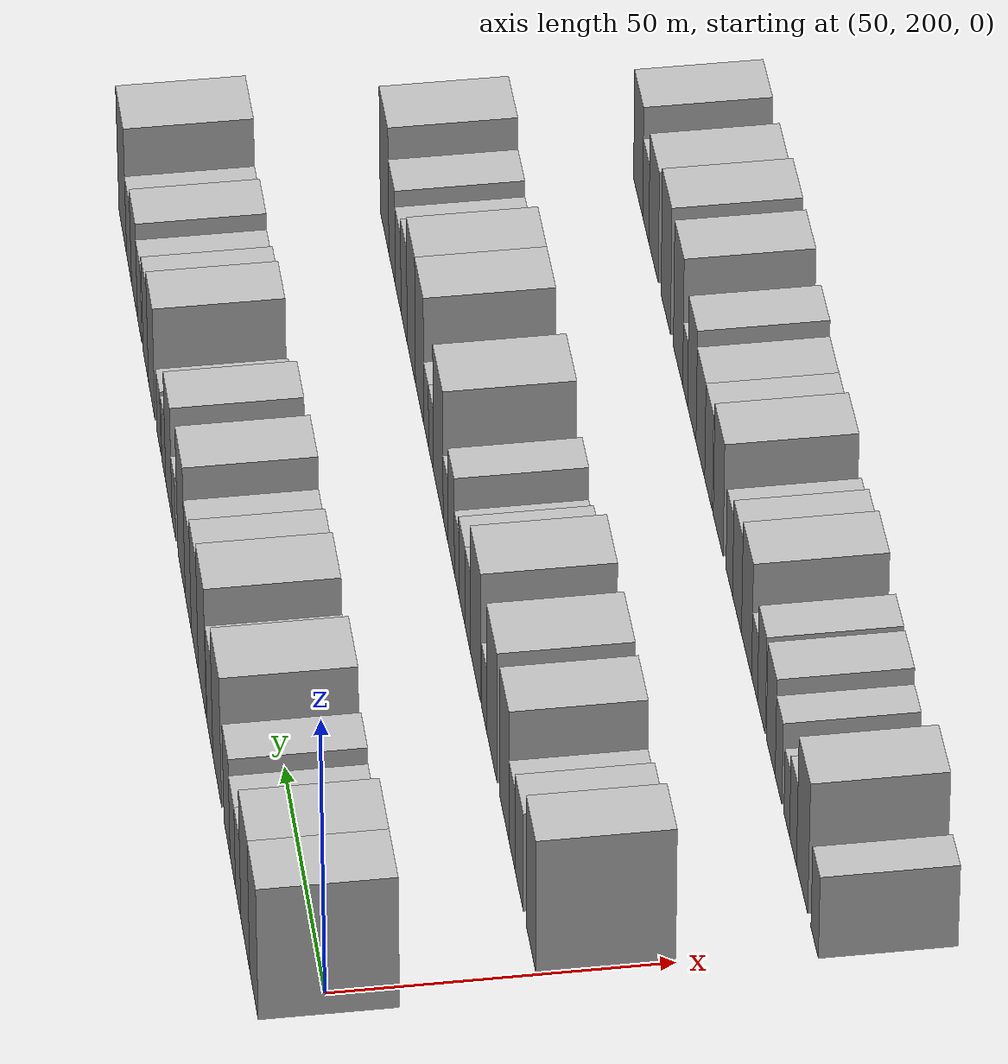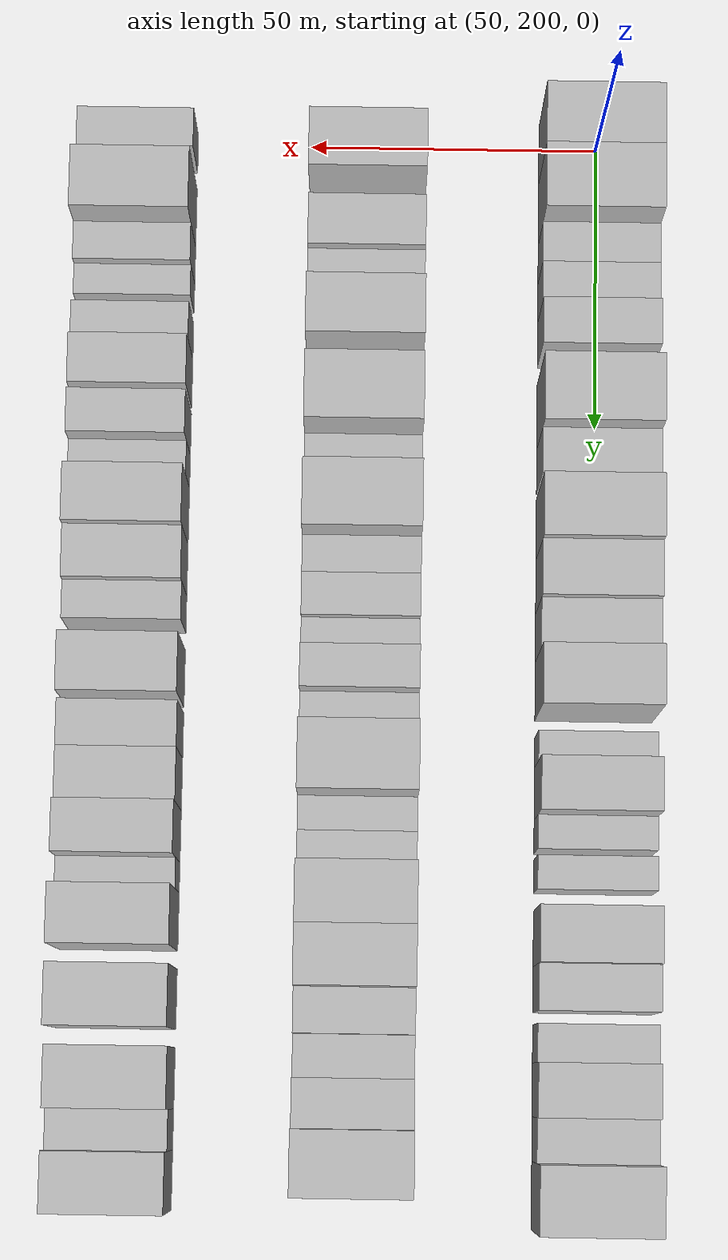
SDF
<sdf version="1.6">
 <world name="default">
  <model name="building_68">
   <static>1</static>
   <pose>50.0000 200.9179 0 0.000000 0.000000 0.000000</pose>
   <link name="link">
    <pose>0 0 12.00 0 0 0</pose>
    <collision name="collision"><geometry><box><size>20.0000 10.5770 24.0000</size></box></geometry></collision>
    <visual name="visual">
     <cast_shadows>0</cast_shadows>
     <geometry><box><size>20.0000 10.5770 24.0000</size></box></geometry>
     <material>
      <script>
       <uri>model://HANNAS_wall/materials/scripts</uri>
       <uri>model://HANNAS_wall/materials/textures</uri>
       <name>vrc/HANNAS_wall</name>
      </script>
     </material>
    </visual>
   </link>
  </model>
  <model name="building_69">
   <static>1</static>
   <pose>50.0000 211.7810 0 0.000000 0.000000 0.000000</pose>
   <link name="link">
    <pose>0 0 12.00 0 0 0</pose>
    <collision name="collision"><geometry><box><size>20.0000 11.1493 24.0000</size></box></geometry></collision>
    <visual name="visual">
     <cast_shadows>0</cast_shadows>
     <geometry><box><size>20.0000 11.1493 24.0000</size></box></geometry>
     <material>
      <script>
       <uri>model://HANNAS_wall/materials/scripts</uri>
       <uri>model://HANNAS_wall/materials/textures</uri>
       <name>vrc/HANNAS_wall</name>
      </script>
     </material>
    </visual>
   </link>
  </model>
  <model name="building_70">
   <static>1</static>
   <pose>50.0000 220.8269 0 0.000000 0.000000 0.000000</pose>
   <link name="link">
    <pose>0 0 7.50 0 0 0</pose>
    <collision name="collision"><geometry><box><size>20.0000 6.9425 15.0000</size></box></geometry></collision>
    <visual name="visual">
     <cast_shadows>0</cast_shadows>
     <geometry><box><size>20.0000 6.9425 15.0000</size></box></geometry>
     <material>
      <script>
       <uri>model://HANNAS_wall/materials/scripts</uri>
       <uri>model://HANNAS_wall/materials/textures</uri>
       <name>vrc/HANNAS_wall</name>
      </script>
     </material>
    </visual>
   </link>
  </model>
  <model name="building_71">
   <static>1</static>
   <pose>50.0000 227.8247 0 0.000000 0.000000 0.000000</pose>
   <link name="link">
    <pose>0 0 7.50 0 0 0</pose>
    <collision name="collision"><geometry><box><size>20.0000 7.0530 15.0000</size></box></geometry></collision>
    <visual name="visual">
     <cast_shadows>0</cast_shadows>
     <geometry><box><size>20.0000 7.0530 15.0000</size></box></geometry>
     <material>
      <script>
       <uri>model://HANNAS_wall/materials/scripts</uri>
       <uri>model://HANNAS_wall/materials/textures</uri>
       <name>vrc/HANNAS_wall</name>
      </script>
     </material>
    </visual>
   </link>
  </model>
  <model name="building_72">
   <static>1</static>
   <pose>50.0000 235.3184 0 0.000000 0.000000 0.000000</pose>
   <link name="link">
    <pose>0 0 9.00 0 0 0</pose>
    <collision name="collision"><geometry><box><size>20.0000 7.9345 18.0000</size></box></geometry></collision>
    <visual name="visual">
     <cast_shadows>0</cast_shadows>
     <geometry><box><size>20.0000 7.9345 18.0000</size></box></geometry>
     <material>
      <script>
       <uri>model://HANNAS_wall/materials/scripts</uri>
       <uri>model://HANNAS_wall/materials/textures</uri>
       <name>vrc/HANNAS_wall</name>
      </script>
     </material>
    </visual>
   </link>
  </model>
  <model name="building_73">
   <static>1</static>
   <pose>50.0000 248.0648 0 0.000000 0.000000 0.000000</pose>
   <link name="link">
    <pose>0 0 12.00 0 0 0</pose>
    <collision name="collision"><geometry><box><size>20.0000 11.5583 24.0000</size></box></geometry></collision>
    <visual name="visual">
     <cast_shadows>0</cast_shadows>
     <geometry><box><size>20.0000 11.5583 24.0000</size></box></geometry>
     <material>
      <script>
       <uri>model://HANNAS_wall/materials/scripts</uri>
       <uri>model://HANNAS_wall/materials/textures</uri>
       <name>vrc/HANNAS_wall</name>
      </script>
     </material>
    </visual>
   </link>
  </model>
  <model name="building_74">
   <static>1</static>
   <pose>50.0000 257.7547 0 0.000000 0.000000 0.000000</pose>
   <link name="link">
    <pose>0 0 9.00 0 0 0</pose>
    <collision name="collision"><geometry><box><size>20.0000 7.8214 18.0000</size></box></geometry></collision>
    <visual name="visual">
     <cast_shadows>0</cast_shadows>
     <geometry><box><size>20.0000 7.8214 18.0000</size></box></geometry>
     <material>
      <script>
       <uri>model://HANNAS_wall/materials/scripts</uri>
       <uri>model://HANNAS_wall/materials/textures</uri>
       <name>vrc/HANNAS_wall</name>
      </script>
     </material>
    </visual>
   </link>
  </model>
  <model name="building_75">
   <static>1</static>
   <pose>50.0000 267.9823 0 0.000000 0.000000 0.000000</pose>
   <link name="link">
    <pose>0 0 12.00 0 0 0</pose>
    <collision name="collision"><geometry><box><size>20.0000 10.6339 24.0000</size></box></geometry></collision>
    <visual name="visual">
     <cast_shadows>0</cast_shadows>
     <geometry><box><size>20.0000 10.6339 24.0000</size></box></geometry>
     <material>
      <script>
       <uri>model://HANNAS_wall/materials/scripts</uri>
       <uri>model://HANNAS_wall/materials/textures</uri>
       <name>vrc/HANNAS_wall</name>
      </script>
     </material>
    </visual>
   </link>
  </model>
  <model name="building_76">
   <static>1</static>
   <pose>50.0000 278.0014 0 0.000000 0.000000 0.000000</pose>
   <link name="link">
    <pose>0 0 10.50 0 0 0</pose>
    <collision name="collision"><geometry><box><size>20.0000 9.4041 21.0000</size></box></geometry></collision>
    <visual name="visual">
     <cast_shadows>0</cast_shadows>
     <geometry><box><size>20.0000 9.4041 21.0000</size></box></geometry>
     <material>
      <script>
       <uri>model://HANNAS_wall/materials/scripts</uri>
       <uri>model://HANNAS_wall/materials/textures</uri>
       <name>vrc/HANNAS_wall</name>
      </script>
     </material>
    </visual>
   </link>
  </model>
  <model name="building_77">
   <static>1</static>
   <pose>50.0000 286.9192 0 0.000000 0.000000 0.000000</pose>
   <link name="link">
    <pose>0 0 9.00 0 0 0</pose>
    <collision name="collision"><geometry><box><size>20.0000 8.4316 18.0000</size></box></geometry></collision>
    <visual name="visual">
     <cast_shadows>0</cast_shadows>
     <geometry><box><size>20.0000 8.4316 18.0000</size></box></geometry>
     <material>
      <script>
       <uri>model://HANNAS_wall/materials/scripts</uri>
       <uri>model://HANNAS_wall/materials/textures</uri>
       <name>vrc/HANNAS_wall</name>
      </script>
     </material>
    </visual>
   </link>
  </model>
  <model name="building_78">
   <static>1</static>
   <pose>50.0000 296.1577 0 0.000000 0.000000 0.000000</pose>
   <link name="link">
    <pose>0 0 12.00 0 0 0</pose>
    <collision name="collision"><geometry><box><size>20.0000 10.0453 24.0000</size></box></geometry></collision>
    <visual name="visual">
     <cast_shadows>0</cast_shadows>
     <geometry><box><size>20.0000 10.0453 24.0000</size></box></geometry>
     <material>
      <script>
       <uri>model://HANNAS_wall/materials/scripts</uri>
       <uri>model://HANNAS_wall/materials/textures</uri>
       <name>vrc/HANNAS_wall</name>
      </script>
     </material>
    </visual>
   </link>
  </model>
  <model name="building_79">
   <static>1</static>
   <pose>50.0000 306.7409 0 0.000000 0.000000 0.000000</pose>
   <link name="link">
    <pose>0 0 6.00 0 0 0</pose>
    <collision name="collision"><geometry><box><size>20.0000 5.1210 12.0000</size></box></geometry></collision>
    <visual name="visual">
     <cast_shadows>0</cast_shadows>
     <geometry><box><size>20.0000 5.1210 12.0000</size></box></geometry>
     <material>
      <script>
       <uri>model://HANNAS_wall/materials/scripts</uri>
       <uri>model://HANNAS_wall/materials/textures</uri>
       <name>vrc/HANNAS_wall</name>
      </script>
     </material>
    </visual>
   </link>
  </model>
  <model name="building_80">
   <static>1</static>
   <pose>50.0000 313.7798 0 0.000000 0.000000 0.000000</pose>
   <link name="link">
    <pose>0 0 10.50 0 0 0</pose>
    <collision name="collision"><geometry><box><size>20.0000 8.9568 21.0000</size></box></geometry></collision>
    <visual name="visual">
     <cast_shadows>0</cast_shadows>
     <geometry><box><size>20.0000 8.9568 21.0000</size></box></geometry>
     <material>
      <script>
       <uri>model://HANNAS_wall/materials/scripts</uri>
       <uri>model://HANNAS_wall/materials/textures</uri>
       <name>vrc/HANNAS_wall</name>
      </script>
     </material>
    </visual>
   </link>
  </model>
  <model name="building_81">
   <static>1</static>
   <pose>50.0000 321.1036 0 0.000000 0.000000 0.000000</pose>
   <link name="link">
    <pose>0 0 6.00 0 0 0</pose>
    <collision name="collision"><geometry><box><size>20.0000 5.6908 12.0000</size></box></geometry></collision>
    <visual name="visual">
     <cast_shadows>0</cast_shadows>
     <geometry><box><size>20.0000 5.6908 12.0000</size></box></geometry>
     <material>
      <script>
       <uri>model://HANNAS_wall/materials/scripts</uri>
       <uri>model://HANNAS_wall/materials/textures</uri>
       <name>vrc/HANNAS_wall</name>
      </script>
     </material>
    </visual>
   </link>
  </model>
  <model name="building_82">
   <static>1</static>
   <pose>50.0000 327.7999 0 0.000000 0.000000 0.000000</pose>
   <link name="link">
    <pose>0 0 6.00 0 0 0</pose>
    <collision name="collision"><geometry><box><size>20.0000 5.7016 12.0000</size></box></geometry></collision>
    <visual name="visual">
     <cast_shadows>0</cast_shadows>
     <geometry><box><size>20.0000 5.7016 12.0000</size></box></geometry>
     <material>
      <script>
       <uri>model://HANNAS_wall/materials/scripts</uri>
       <uri>model://HANNAS_wall/materials/textures</uri>
       <name>vrc/HANNAS_wall</name>
      </script>
     </material>
    </visual>
   </link>
  </model>
  <model name="building_83">
   <static>1</static>
   <pose>50.0000 338.3224 0 0.000000 0.000000 0.000000</pose>
   <link name="link">
    <pose>0 0 10.50 0 0 0</pose>
    <collision name="collision"><geometry><box><size>20.0000 9.3435 21.0000</size></box></geometry></collision>
    <visual name="visual">
     <cast_shadows>0</cast_shadows>
     <geometry><box><size>20.0000 9.3435 21.0000</size></box></geometry>
     <material>
      <script>
       <uri>model://HANNAS_wall/materials/scripts</uri>
       <uri>model://HANNAS_wall/materials/textures</uri>
       <name>vrc/HANNAS_wall</name>
      </script>
     </material>
    </visual>
   </link>
  </model>
  <model name="building_84">
   <static>1</static>
   <pose>50.0000 346.8448 0 0.000000 0.000000 0.000000</pose>
   <link name="link">
    <pose>0 0 9.00 0 0 0</pose>
    <collision name="collision"><geometry><box><size>20.0000 7.7013 18.0000</size></box></geometry></collision>
    <visual name="visual">
     <cast_shadows>0</cast_shadows>
     <geometry><box><size>20.0000 7.7013 18.0000</size></box></geometry>
     <material>
      <script>
       <uri>model://HANNAS_wall/materials/scripts</uri>
       <uri>model://HANNAS_wall/materials/textures</uri>
       <name>vrc/HANNAS_wall</name>
      </script>
     </material>
    </visual>
   </link>
  </model>
  <model name="building_85">
   <static>1</static>
   <pose>50.0000 355.8475 0 0.000000 0.000000 0.000000</pose>
   <link name="link">
    <pose>0 0 7.50 0 0 0</pose>
    <collision name="collision"><geometry><box><size>20.0000 6.3040 15.0000</size></box></geometry></collision>
    <visual name="visual">
     <cast_shadows>0</cast_shadows>
     <geometry><box><size>20.0000 6.3040 15.0000</size></box></geometry>
     <material>
      <script>
       <uri>model://HANNAS_wall/materials/scripts</uri>
       <uri>model://HANNAS_wall/materials/textures</uri>
       <name>vrc/HANNAS_wall</name>
      </script>
     </material>
    </visual>
   </link>
  </model>
  <model name="building_86">
   <static>1</static>
   <pose>50.0000 363.4536 0 0.000000 0.000000 0.000000</pose>
   <link name="link">
    <pose>0 0 9.00 0 0 0</pose>
    <collision name="collision"><geometry><box><size>20.0000 8.9084 18.0000</size></box></geometry></collision>
    <visual name="visual">
     <cast_shadows>0</cast_shadows>
     <geometry><box><size>20.0000 8.9084 18.0000</size></box></geometry>
     <material>
      <script>
       <uri>model://HANNAS_wall/materials/scripts</uri>
       <uri>model://HANNAS_wall/materials/textures</uri>
       <name>vrc/HANNAS_wall</name>
      </script>
     </material>
    </visual>
   </link>
  </model>
  <model name="building_87">
   <static>1</static>
   <pose>50.0000 371.5803 0 0.000000 0.000000 0.000000</pose>
   <link name="link">
    <pose>0 0 7.50 0 0 0</pose>
    <collision name="collision"><geometry><box><size>20.0000 7.3449 15.0000</size></box></geometry></collision>
    <visual name="visual">
     <cast_shadows>0</cast_shadows>
     <geometry><box><size>20.0000 7.3449 15.0000</size></box></geometry>
     <material>
      <script>
       <uri>model://HANNAS_wall/materials/scripts</uri>
       <uri>model://HANNAS_wall/materials/textures</uri>
       <name>vrc/HANNAS_wall</name>
      </script>
     </material>
    </visual>
   </link>
  </model>
  <model name="building_88">
   <static>1</static>
   <pose>50.0000 380.8869 0 0.000000 0.000000 0.000000</pose>
   <link name="link">
    <pose>0 0 12.00 0 0 0</pose>
    <collision name="collision"><geometry><box><size>20.0000 11.2684 24.0000</size></box></geometry></collision>
    <visual name="visual">
     <cast_shadows>0</cast_shadows>
     <geometry><box><size>20.0000 11.2684 24.0000</size></box></geometry>
     <material>
      <script>
       <uri>model://HANNAS_wall/materials/scripts</uri>
       <uri>model://HANNAS_wall/materials/textures</uri>
       <name>vrc/HANNAS_wall</name>
      </script>
     </material>
    </visual>
   </link>
  </model>
  <model name="building_158">
   <static>1</static>
   <pose>90.0000 205.8210 0 0.000000 0.000000 0.000000</pose>
   <link name="link">
    <pose>0 0 12.00 0 0 0</pose>
    <collision name="collision"><geometry><box><size>20.0000 10.0894 24.0000</size></box></geometry></collision>
    <visual name="visual">
     <cast_shadows>0</cast_shadows>
     <geometry><box><size>20.0000 10.0894 24.0000</size></box></geometry>
     <material>
      <script>
       <uri>model://HANNAS_wall/materials/scripts</uri>
       <uri>model://HANNAS_wall/materials/textures</uri>
       <name>vrc/HANNAS_wall</name>
      </script>
     </material>
    </visual>
   </link>
  </model>
  <model name="building_159">
   <static>1</static>
   <pose>90.0000 218.2884 0 0.000000 0.000000 0.000000</pose>
   <link name="link">
    <pose>0 0 9.00 0 0 0</pose>
    <collision name="collision"><geometry><box><size>20.0000 8.8454 18.0000</size></box></geometry></collision>
    <visual name="visual">
     <cast_shadows>0</cast_shadows>
     <geometry><box><size>20.0000 8.8454 18.0000</size></box></geometry>
     <material>
      <script>
       <uri>model://HANNAS_wall/materials/scripts</uri>
       <uri>model://HANNAS_wall/materials/textures</uri>
       <name>vrc/HANNAS_wall</name>
      </script>
     </material>
    </visual>
   </link>
  </model>
  <model name="building_160">
   <static>1</static>
   <pose>90.0000 226.0633 0 0.000000 0.000000 0.000000</pose>
   <link name="link">
    <pose>0 0 7.50 0 0 0</pose>
    <collision name="collision"><geometry><box><size>20.0000 6.7044 15.0000</size></box></geometry></collision>
    <visual name="visual">
     <cast_shadows>0</cast_shadows>
     <geometry><box><size>20.0000 6.7044 15.0000</size></box></geometry>
     <material>
      <script>
       <uri>model://HANNAS_wall/materials/scripts</uri>
       <uri>model://HANNAS_wall/materials/textures</uri>
       <name>vrc/HANNAS_wall</name>
      </script>
     </material>
    </visual>
   </link>
  </model>
  <model name="building_161">
   <static>1</static>
   <pose>90.0000 234.4934 0 0.000000 0.000000 0.000000</pose>
   <link name="link">
    <pose>0 0 12.00 0 0 0</pose>
    <collision name="collision"><geometry><box><size>20.0000 10.1559 24.0000</size></box></geometry></collision>
    <visual name="visual">
     <cast_shadows>0</cast_shadows>
     <geometry><box><size>20.0000 10.1559 24.0000</size></box></geometry>
     <material>
      <script>
       <uri>model://HANNAS_wall/materials/scripts</uri>
       <uri>model://HANNAS_wall/materials/textures</uri>
       <name>vrc/HANNAS_wall</name>
      </script>
     </material>
    </visual>
   </link>
  </model>
  <model name="building_162">
   <static>1</static>
   <pose>90.0000 248.3686 0 0.000000 0.000000 0.000000</pose>
   <link name="link">
    <pose>0 0 12.00 0 0 0</pose>
    <collision name="collision"><geometry><box><size>20.0000 11.5945 24.0000</size></box></geometry></collision>
    <visual name="visual">
     <cast_shadows>0</cast_shadows>
     <geometry><box><size>20.0000 11.5945 24.0000</size></box></geometry>
     <material>
      <script>
       <uri>model://HANNAS_wall/materials/scripts</uri>
       <uri>model://HANNAS_wall/materials/textures</uri>
       <name>vrc/HANNAS_wall</name>
      </script>
     </material>
    </visual>
   </link>
  </model>
  <model name="building_163">
   <static>1</static>
   <pose>90.0000 256.9920 0 0.000000 0.000000 0.000000</pose>
   <link name="link">
    <pose>0 0 6.00 0 0 0</pose>
    <collision name="collision"><geometry><box><size>20.0000 5.6522 12.0000</size></box></geometry></collision>
    <visual name="visual">
     <cast_shadows>0</cast_shadows>
     <geometry><box><size>20.0000 5.6522 12.0000</size></box></geometry>
     <material>
      <script>
       <uri>model://HANNAS_wall/materials/scripts</uri>
       <uri>model://HANNAS_wall/materials/textures</uri>
       <name>vrc/HANNAS_wall</name>
      </script>
     </material>
    </visual>
   </link>
  </model>
  <model name="building_164">
   <static>1</static>
   <pose>90.0000 266.5095 0 0.000000 0.000000 0.000000</pose>
   <link name="link">
    <pose>0 0 12.00 0 0 0</pose>
    <collision name="collision"><geometry><box><size>20.0000 11.3828 24.0000</size></box></geometry></collision>
    <visual name="visual">
     <cast_shadows>0</cast_shadows>
     <geometry><box><size>20.0000 11.3828 24.0000</size></box></geometry>
     <material>
      <script>
       <uri>model://HANNAS_wall/materials/scripts</uri>
       <uri>model://HANNAS_wall/materials/textures</uri>
       <name>vrc/HANNAS_wall</name>
      </script>
     </material>
    </visual>
   </link>
  </model>
  <model name="building_165">
   <static>1</static>
   <pose>90.0000 275.3521 0 0.000000 0.000000 0.000000</pose>
   <link name="link">
    <pose>0 0 7.50 0 0 0</pose>
    <collision name="collision"><geometry><box><size>20.0000 6.3025 15.0000</size></box></geometry></collision>
    <visual name="visual">
     <cast_shadows>0</cast_shadows>
     <geometry><box><size>20.0000 6.3025 15.0000</size></box></geometry>
     <material>
      <script>
       <uri>model://HANNAS_wall/materials/scripts</uri>
       <uri>model://HANNAS_wall/materials/textures</uri>
       <name>vrc/HANNAS_wall</name>
      </script>
     </material>
    </visual>
   </link>
  </model>
  <model name="building_166">
   <static>1</static>
   <pose>90.0000 282.1165 0 0.000000 0.000000 0.000000</pose>
   <link name="link">
    <pose>0 0 7.50 0 0 0</pose>
    <collision name="collision"><geometry><box><size>20.0000 7.2263 15.0000</size></box></geometry></collision>
    <visual name="visual">
     <cast_shadows>0</cast_shadows>
     <geometry><box><size>20.0000 7.2263 15.0000</size></box></geometry>
     <material>
      <script>
       <uri>model://HANNAS_wall/materials/scripts</uri>
       <uri>model://HANNAS_wall/materials/textures</uri>
       <name>vrc/HANNAS_wall</name>
      </script>
     </material>
    </visual>
   </link>
  </model>
  <model name="building_167">
   <static>1</static>
   <pose>90.0000 288.3420 0 0.000000 0.000000 0.000000</pose>
   <link name="link">
    <pose>0 0 6.00 0 0 0</pose>
    <collision name="collision"><geometry><box><size>20.0000 5.2246 12.0000</size></box></geometry></collision>
    <visual name="visual">
     <cast_shadows>0</cast_shadows>
     <geometry><box><size>20.0000 5.2246 12.0000</size></box></geometry>
     <material>
      <script>
       <uri>model://HANNAS_wall/materials/scripts</uri>
       <uri>model://HANNAS_wall/materials/textures</uri>
       <name>vrc/HANNAS_wall</name>
      </script>
     </material>
    </visual>
   </link>
  </model>
  <model name="building_168">
   <static>1</static>
   <pose>90.0000 294.5865 0 0.000000 0.000000 0.000000</pose>
   <link name="link">
    <pose>0 0 9.00 0 0 0</pose>
    <collision name="collision"><geometry><box><size>20.0000 7.2645 18.0000</size></box></geometry></collision>
    <visual name="visual">
     <cast_shadows>0</cast_shadows>
     <geometry><box><size>20.0000 7.2645 18.0000</size></box></geometry>
     <material>
      <script>
       <uri>model://HANNAS_wall/materials/scripts</uri>
       <uri>model://HANNAS_wall/materials/textures</uri>
       <name>vrc/HANNAS_wall</name>
      </script>
     </material>
    </visual>
   </link>
  </model>
  <model name="building_169">
   <static>1</static>
   <pose>90.0000 301.1651 0 0.000000 0.000000 0.000000</pose>
   <link name="link">
    <pose>0 0 6.00 0 0 0</pose>
    <collision name="collision"><geometry><box><size>20.0000 5.8927 12.0000</size></box></geometry></collision>
    <visual name="visual">
     <cast_shadows>0</cast_shadows>
     <geometry><box><size>20.0000 5.8927 12.0000</size></box></geometry>
     <material>
      <script>
       <uri>model://HANNAS_wall/materials/scripts</uri>
       <uri>model://HANNAS_wall/materials/textures</uri>
       <name>vrc/HANNAS_wall</name>
      </script>
     </material>
    </visual>
   </link>
  </model>
  <model name="building_170">
   <static>1</static>
   <pose>90.0000 309.9028 0 0.000000 0.000000 0.000000</pose>
   <link name="link">
    <pose>0 0 12.00 0 0 0</pose>
    <collision name="collision"><geometry><box><size>20.0000 11.5827 24.0000</size></box></geometry></collision>
    <visual name="visual">
     <cast_shadows>0</cast_shadows>
     <geometry><box><size>20.0000 11.5827 24.0000</size></box></geometry>
     <material>
      <script>
       <uri>model://HANNAS_wall/materials/scripts</uri>
       <uri>model://HANNAS_wall/materials/textures</uri>
       <name>vrc/HANNAS_wall</name>
      </script>
     </material>
    </visual>
   </link>
  </model>
  <model name="building_171">
   <static>1</static>
   <pose>90.0000 318.5635 0 0.000000 0.000000 0.000000</pose>
   <link name="link">
    <pose>0 0 6.00 0 0 0</pose>
    <collision name="collision"><geometry><box><size>20.0000 5.7387 12.0000</size></box></geometry></collision>
    <visual name="visual">
     <cast_shadows>0</cast_shadows>
     <geometry><box><size>20.0000 5.7387 12.0000</size></box></geometry>
     <material>
      <script>
       <uri>model://HANNAS_wall/materials/scripts</uri>
       <uri>model://HANNAS_wall/materials/textures</uri>
       <name>vrc/HANNAS_wall</name>
      </script>
     </material>
    </visual>
   </link>
  </model>
  <model name="building_172">
   <static>1</static>
   <pose>90.0000 324.2413 0 0.000000 0.000000 0.000000</pose>
   <link name="link">
    <pose>0 0 6.00 0 0 0</pose>
    <collision name="collision"><geometry><box><size>20.0000 5.6168 12.0000</size></box></geometry></collision>
    <visual name="visual">
     <cast_shadows>0</cast_shadows>
     <geometry><box><size>20.0000 5.6168 12.0000</size></box></geometry>
     <material>
      <script>
       <uri>model://HANNAS_wall/materials/scripts</uri>
       <uri>model://HANNAS_wall/materials/textures</uri>
       <name>vrc/HANNAS_wall</name>
      </script>
     </material>
    </visual>
   </link>
  </model>
  <model name="building_173">
   <static>1</static>
   <pose>90.0000 332.1966 0 0.000000 0.000000 0.000000</pose>
   <link name="link">
    <pose>0 0 12.00 0 0 0</pose>
    <collision name="collision"><geometry><box><size>20.0000 10.2939 24.0000</size></box></geometry></collision>
    <visual name="visual">
     <cast_shadows>0</cast_shadows>
     <geometry><box><size>20.0000 10.2939 24.0000</size></box></geometry>
     <material>
      <script>
       <uri>model://HANNAS_wall/materials/scripts</uri>
       <uri>model://HANNAS_wall/materials/textures</uri>
       <name>vrc/HANNAS_wall</name>
      </script>
     </material>
    </visual>
   </link>
  </model>
  <model name="building_174">
   <static>1</static>
   <pose>90.0000 342.3704 0 0.000000 0.000000 0.000000</pose>
   <link name="link">
    <pose>0 0 12.00 0 0 0</pose>
    <collision name="collision"><geometry><box><size>20.0000 10.0538 24.0000</size></box></geometry></collision>
    <visual name="visual">
     <cast_shadows>0</cast_shadows>
     <geometry><box><size>20.0000 10.0538 24.0000</size></box></geometry>
     <material>
      <script>
       <uri>model://HANNAS_wall/materials/scripts</uri>
       <uri>model://HANNAS_wall/materials/textures</uri>
       <name>vrc/HANNAS_wall</name>
      </script>
     </material>
    </visual>
   </link>
  </model>
  <model name="building_175">
   <static>1</static>
   <pose>90.0000 351.1864 0 0.000000 0.000000 0.000000</pose>
   <link name="link">
    <pose>0 0 9.00 0 0 0</pose>
    <collision name="collision"><geometry><box><size>20.0000 7.5781 18.0000</size></box></geometry></collision>
    <visual name="visual">
     <cast_shadows>0</cast_shadows>
     <geometry><box><size>20.0000 7.5781 18.0000</size></box></geometry>
     <material>
      <script>
       <uri>model://HANNAS_wall/materials/scripts</uri>
       <uri>model://HANNAS_wall/materials/textures</uri>
       <name>vrc/HANNAS_wall</name>
      </script>
     </material>
    </visual>
   </link>
  </model>
  <model name="building_176">
   <static>1</static>
   <pose>90.0000 358.5273 0 0.000000 0.000000 0.000000</pose>
   <link name="link">
    <pose>0 0 7.50 0 0 0</pose>
    <collision name="collision"><geometry><box><size>20.0000 7.1037 15.0000</size></box></geometry></collision>
    <visual name="visual">
     <cast_shadows>0</cast_shadows>
     <geometry><box><size>20.0000 7.1037 15.0000</size></box></geometry>
     <material>
      <script>
       <uri>model://HANNAS_wall/materials/scripts</uri>
       <uri>model://HANNAS_wall/materials/textures</uri>
       <name>vrc/HANNAS_wall</name>
      </script>
     </material>
    </visual>
   </link>
  </model>
  <model name="building_177">
   <static>1</static>
   <pose>90.0000 366.1492 0 0.000000 0.000000 0.000000</pose>
   <link name="link">
    <pose>0 0 9.00 0 0 0</pose>
    <collision name="collision"><geometry><box><size>20.0000 8.1400 18.0000</size></box></geometry></collision>
    <visual name="visual">
     <cast_shadows>0</cast_shadows>
     <geometry><box><size>20.0000 8.1400 18.0000</size></box></geometry>
     <material>
      <script>
       <uri>model://HANNAS_wall/materials/scripts</uri>
       <uri>model://HANNAS_wall/materials/textures</uri>
       <name>vrc/HANNAS_wall</name>
      </script>
     </material>
    </visual>
   </link>
  </model>
  <model name="building_178">
   <static>1</static>
   <pose>90.0000 375.6449 0 0.000000 0.000000 0.000000</pose>
   <link name="link">
    <pose>0 0 12.00 0 0 0</pose>
    <collision name="collision"><geometry><box><size>20.0000 10.8514 24.0000</size></box></geometry></collision>
    <visual name="visual">
     <cast_shadows>0</cast_shadows>
     <geometry><box><size>20.0000 10.8514 24.0000</size></box></geometry>
     <material>
      <script>
       <uri>model://HANNAS_wall/materials/scripts</uri>
       <uri>model://HANNAS_wall/materials/textures</uri>
       <name>vrc/HANNAS_wall</name>
      </script>
     </material>
    </visual>
   </link>
  </model>
  <model name="building_232">
   <static>1</static>
   <pose>130.0000 201.6313 0 0.000000 0.000000 0.000000</pose>
   <link name="link">
    <pose>0 0 7.50 0 0 0</pose>
    <collision name="collision"><geometry><box><size>20.0000 6.8002 15.0000</size></box></geometry></collision>
    <visual name="visual">
     <cast_shadows>0</cast_shadows>
     <geometry><box><size>20.0000 6.8002 15.0000</size></box></geometry>
     <material>
      <script>
       <uri>model://HANNAS_wall/materials/scripts</uri>
       <uri>model://HANNAS_wall/materials/textures</uri>
       <name>vrc/HANNAS_wall</name>
      </script>
     </material>
    </visual>
   </link>
  </model>
  <model name="building_233">
   <static>1</static>
   <pose>130.0000 213.3090 0 0.000000 0.000000 0.000000</pose>
   <link name="link">
    <pose>0 0 12.00 0 0 0</pose>
    <collision name="collision"><geometry><box><size>20.0000 10.5552 24.0000</size></box></geometry></collision>
    <visual name="visual">
     <cast_shadows>0</cast_shadows>
     <geometry><box><size>20.0000 10.5552 24.0000</size></box></geometry>
     <material>
      <script>
       <uri>model://HANNAS_wall/materials/scripts</uri>
       <uri>model://HANNAS_wall/materials/textures</uri>
       <name>vrc/HANNAS_wall</name>
      </script>
     </material>
    </visual>
   </link>
  </model>
  <model name="building_234">
   <static>1</static>
   <pose>130.0000 221.8537 0 0.000000 0.000000 0.000000</pose>
   <link name="link">
    <pose>0 0 7.50 0 0 0</pose>
    <collision name="collision"><geometry><box><size>20.0000 6.5341 15.0000</size></box></geometry></collision>
    <visual name="visual">
     <cast_shadows>0</cast_shadows>
     <geometry><box><size>20.0000 6.5341 15.0000</size></box></geometry>
     <material>
      <script>
       <uri>model://HANNAS_wall/materials/scripts</uri>
       <uri>model://HANNAS_wall/materials/textures</uri>
       <name>vrc/HANNAS_wall</name>
      </script>
     </material>
    </visual>
   </link>
  </model>
  <model name="building_235">
   <static>1</static>
   <pose>130.0000 227.7614 0 0.000000 0.000000 0.000000</pose>
   <link name="link">
    <pose>0 0 6.00 0 0 0</pose>
    <collision name="collision"><geometry><box><size>20.0000 5.2813 12.0000</size></box></geometry></collision>
    <visual name="visual">
     <cast_shadows>0</cast_shadows>
     <geometry><box><size>20.0000 5.2813 12.0000</size></box></geometry>
     <material>
      <script>
       <uri>model://HANNAS_wall/materials/scripts</uri>
       <uri>model://HANNAS_wall/materials/textures</uri>
       <name>vrc/HANNAS_wall</name>
      </script>
     </material>
    </visual>
   </link>
  </model>
  <model name="building_236">
   <static>1</static>
   <pose>130.0000 235.5692 0 0.000000 0.000000 0.000000</pose>
   <link name="link">
    <pose>0 0 7.50 0 0 0</pose>
    <collision name="collision"><geometry><box><size>20.0000 6.3343 15.0000</size></box></geometry></collision>
    <visual name="visual">
     <cast_shadows>0</cast_shadows>
     <geometry><box><size>20.0000 6.3343 15.0000</size></box></geometry>
     <material>
      <script>
       <uri>model://HANNAS_wall/materials/scripts</uri>
       <uri>model://HANNAS_wall/materials/textures</uri>
       <name>vrc/HANNAS_wall</name>
      </script>
     </material>
    </visual>
   </link>
  </model>
  <model name="building_237">
   <static>1</static>
   <pose>130.0000 243.0323 0 0.000000 0.000000 0.000000</pose>
   <link name="link">
    <pose>0 0 9.00 0 0 0</pose>
    <collision name="collision"><geometry><box><size>20.0000 8.5920 18.0000</size></box></geometry></collision>
    <visual name="visual">
     <cast_shadows>0</cast_shadows>
     <geometry><box><size>20.0000 8.5920 18.0000</size></box></geometry>
     <material>
      <script>
       <uri>model://HANNAS_wall/materials/scripts</uri>
       <uri>model://HANNAS_wall/materials/textures</uri>
       <name>vrc/HANNAS_wall</name>
      </script>
     </material>
    </visual>
   </link>
  </model>
  <model name="building_238">
   <static>1</static>
   <pose>130.0000 252.0592 0 0.000000 0.000000 0.000000</pose>
   <link name="link">
    <pose>0 0 9.00 0 0 0</pose>
    <collision name="collision"><geometry><box><size>20.0000 7.4618 18.0000</size></box></geometry></collision>
    <visual name="visual">
     <cast_shadows>0</cast_shadows>
     <geometry><box><size>20.0000 7.4618 18.0000</size></box></geometry>
     <material>
      <script>
       <uri>model://HANNAS_wall/materials/scripts</uri>
       <uri>model://HANNAS_wall/materials/textures</uri>
       <name>vrc/HANNAS_wall</name>
      </script>
     </material>
    </visual>
   </link>
  </model>
  <model name="building_239">
   <static>1</static>
   <pose>130.0000 258.6977 0 0.000000 0.000000 0.000000</pose>
   <link name="link">
    <pose>0 0 6.00 0 0 0</pose>
    <collision name="collision"><geometry><box><size>20.0000 5.8151 12.0000</size></box></geometry></collision>
    <visual name="visual">
     <cast_shadows>0</cast_shadows>
     <geometry><box><size>20.0000 5.8151 12.0000</size></box></geometry>
     <material>
      <script>
       <uri>model://HANNAS_wall/materials/scripts</uri>
       <uri>model://HANNAS_wall/materials/textures</uri>
       <name>vrc/HANNAS_wall</name>
      </script>
     </material>
    </visual>
   </link>
  </model>
  <model name="building_240">
   <static>1</static>
   <pose>130.0000 266.5597 0 0.000000 0.000000 0.000000</pose>
   <link name="link">
    <pose>0 0 10.50 0 0 0</pose>
    <collision name="collision"><geometry><box><size>20.0000 9.9089 21.0000</size></box></geometry></collision>
    <visual name="visual">
     <cast_shadows>0</cast_shadows>
     <geometry><box><size>20.0000 9.9089 21.0000</size></box></geometry>
     <material>
      <script>
       <uri>model://HANNAS_wall/materials/scripts</uri>
       <uri>model://HANNAS_wall/materials/textures</uri>
       <name>vrc/HANNAS_wall</name>
      </script>
     </material>
    </visual>
   </link>
  </model>
  <model name="building_241">
   <static>1</static>
   <pose>130.0000 275.9840 0 0.000000 0.000000 0.000000</pose>
   <link name="link">
    <pose>0 0 9.00 0 0 0</pose>
    <collision name="collision"><geometry><box><size>20.0000 8.9395 18.0000</size></box></geometry></collision>
    <visual name="visual">
     <cast_shadows>0</cast_shadows>
     <geometry><box><size>20.0000 8.9395 18.0000</size></box></geometry>
     <material>
      <script>
       <uri>model://HANNAS_wall/materials/scripts</uri>
       <uri>model://HANNAS_wall/materials/textures</uri>
       <name>vrc/HANNAS_wall</name>
      </script>
     </material>
    </visual>
   </link>
  </model>
  <model name="building_242">
   <static>1</static>
   <pose>130.0000 283.6913 0 0.000000 0.000000 0.000000</pose>
   <link name="link">
    <pose>0 0 7.50 0 0 0</pose>
    <collision name="collision"><geometry><box><size>20.0000 6.4752 15.0000</size></box></geometry></collision>
    <visual name="visual">
     <cast_shadows>0</cast_shadows>
     <geometry><box><size>20.0000 6.4752 15.0000</size></box></geometry>
     <material>
      <script>
       <uri>model://HANNAS_wall/materials/scripts</uri>
       <uri>model://HANNAS_wall/materials/textures</uri>
       <name>vrc/HANNAS_wall</name>
      </script>
     </material>
    </visual>
   </link>
  </model>
  <model name="building_243">
   <static>1</static>
   <pose>130.0000 294.8914 0 0.000000 0.000000 0.000000</pose>
   <link name="link">
    <pose>0 0 10.50 0 0 0</pose>
    <collision name="collision"><geometry><box><size>20.0000 9.9250 21.0000</size></box></geometry></collision>
    <visual name="visual">
     <cast_shadows>0</cast_shadows>
     <geometry><box><size>20.0000 9.9250 21.0000</size></box></geometry>
     <material>
      <script>
       <uri>model://HANNAS_wall/materials/scripts</uri>
       <uri>model://HANNAS_wall/materials/textures</uri>
       <name>vrc/HANNAS_wall</name>
      </script>
     </material>
    </visual>
   </link>
  </model>
  <model name="building_244">
   <static>1</static>
   <pose>130.0000 304.7436 0 0.000000 0.000000 0.000000</pose>
   <link name="link">
    <pose>0 0 9.00 0 0 0</pose>
    <collision name="collision"><geometry><box><size>20.0000 7.7795 18.0000</size></box></geometry></collision>
    <visual name="visual">
     <cast_shadows>0</cast_shadows>
     <geometry><box><size>20.0000 7.7795 18.0000</size></box></geometry>
     <material>
      <script>
       <uri>model://HANNAS_wall/materials/scripts</uri>
       <uri>model://HANNAS_wall/materials/textures</uri>
       <name>vrc/HANNAS_wall</name>
      </script>
     </material>
    </visual>
   </link>
  </model>
  <model name="building_245">
   <static>1</static>
   <pose>130.0000 313.0964 0 0.000000 0.000000 0.000000</pose>
   <link name="link">
    <pose>0 0 9.00 0 0 0</pose>
    <collision name="collision"><geometry><box><size>20.0000 8.9260 18.0000</size></box></geometry></collision>
    <visual name="visual">
     <cast_shadows>0</cast_shadows>
     <geometry><box><size>20.0000 8.9260 18.0000</size></box></geometry>
     <material>
      <script>
       <uri>model://HANNAS_wall/materials/scripts</uri>
       <uri>model://HANNAS_wall/materials/textures</uri>
       <name>vrc/HANNAS_wall</name>
      </script>
     </material>
    </visual>
   </link>
  </model>
  <model name="building_246">
   <static>1</static>
   <pose>130.0000 321.9559 0 0.000000 0.000000 0.000000</pose>
   <link name="link">
    <pose>0 0 10.50 0 0 0</pose>
    <collision name="collision"><geometry><box><size>20.0000 8.7931 21.0000</size></box></geometry></collision>
    <visual name="visual">
     <cast_shadows>0</cast_shadows>
     <geometry><box><size>20.0000 8.7931 21.0000</size></box></geometry>
     <material>
      <script>
       <uri>model://HANNAS_wall/materials/scripts</uri>
       <uri>model://HANNAS_wall/materials/textures</uri>
       <name>vrc/HANNAS_wall</name>
      </script>
     </material>
    </visual>
   </link>
  </model>
  <model name="building_247">
   <static>1</static>
   <pose>130.0000 328.9178 0 0.000000 0.000000 0.000000</pose>
   <link name="link">
    <pose>0 0 6.00 0 0 0</pose>
    <collision name="collision"><geometry><box><size>20.0000 5.1308 12.0000</size></box></geometry></collision>
    <visual name="visual">
     <cast_shadows>0</cast_shadows>
     <geometry><box><size>20.0000 5.1308 12.0000</size></box></geometry>
     <material>
      <script>
       <uri>model://HANNAS_wall/materials/scripts</uri>
       <uri>model://HANNAS_wall/materials/textures</uri>
       <name>vrc/HANNAS_wall</name>
      </script>
     </material>
    </visual>
   </link>
  </model>
  <model name="building_248">
   <static>1</static>
   <pose>130.0000 336.3990 0 0.000000 0.000000 0.000000</pose>
   <link name="link">
    <pose>0 0 12.00 0 0 0</pose>
    <collision name="collision"><geometry><box><size>20.0000 9.8316 24.0000</size></box></geometry></collision>
    <visual name="visual">
     <cast_shadows>0</cast_shadows>
     <geometry><box><size>20.0000 9.8316 24.0000</size></box></geometry>
     <material>
      <script>
       <uri>model://HANNAS_wall/materials/scripts</uri>
       <uri>model://HANNAS_wall/materials/textures</uri>
       <name>vrc/HANNAS_wall</name>
      </script>
     </material>
    </visual>
   </link>
  </model>
  <model name="building_249">
   <static>1</static>
   <pose>130.0000 349.3807 0 0.000000 0.000000 0.000000</pose>
   <link name="link">
    <pose>0 0 12.00 0 0 0</pose>
    <collision name="collision"><geometry><box><size>20.0000 10.1320 24.0000</size></box></geometry></collision>
    <visual name="visual">
     <cast_shadows>0</cast_shadows>
     <geometry><box><size>20.0000 10.1320 24.0000</size></box></geometry>
     <material>
      <script>
       <uri>model://HANNAS_wall/materials/scripts</uri>
       <uri>model://HANNAS_wall/materials/textures</uri>
       <name>vrc/HANNAS_wall</name>
      </script>
     </material>
    </visual>
   </link>
  </model>
  <model name="building_250">
   <static>1</static>
   <pose>130.0000 362.5108 0 0.000000 0.000000 0.000000</pose>
   <link name="link">
    <pose>0 0 10.50 0 0 0</pose>
    <collision name="collision"><geometry><box><size>20.0000 10.1281 21.0000</size></box></geometry></collision>
    <visual name="visual">
     <cast_shadows>0</cast_shadows>
     <geometry><box><size>20.0000 10.1281 21.0000</size></box></geometry>
     <material>
      <script>
       <uri>model://HANNAS_wall/materials/scripts</uri>
       <uri>model://HANNAS_wall/materials/textures</uri>
       <name>vrc/HANNAS_wall</name>
      </script>
     </material>
    </visual>
   </link>
  </model>
  <model name="building_251">
   <static>1</static>
   <pose>130.0000 370.9571 0 0.000000 0.000000 0.000000</pose>
   <link name="link">
    <pose>0 0 7.50 0 0 0</pose>
    <collision name="collision"><geometry><box><size>20.0000 6.7646 15.0000</size></box></geometry></collision>
    <visual name="visual">
     <cast_shadows>0</cast_shadows>
     <geometry><box><size>20.0000 6.7646 15.0000</size></box></geometry>
     <material>
      <script>
       <uri>model://HANNAS_wall/materials/scripts</uri>
       <uri>model://HANNAS_wall/materials/textures</uri>
       <name>vrc/HANNAS_wall</name>
      </script>
     </material>
    </visual>
   </link>
  </model>
  <model name="building_252">
   <static>1</static>
   <pose>130.0000 379.3275 0 0.000000 0.000000 0.000000</pose>
   <link name="link">
    <pose>0 0 10.50 0 0 0</pose>
    <collision name="collision"><geometry><box><size>20.0000 9.9760 21.0000</size></box></geometry></collision>
    <visual name="visual">
     <cast_shadows>0</cast_shadows>
     <geometry><box><size>20.0000 9.9760 21.0000</size></box></geometry>
     <material>
      <script>
       <uri>model://HANNAS_wall/materials/scripts</uri>
       <uri>model://HANNAS_wall/materials/textures</uri>
       <name>vrc/HANNAS_wall</name>
      </script>
     </material>
    </visual>
   </link>
  </model>
 </world>
</sdf>
